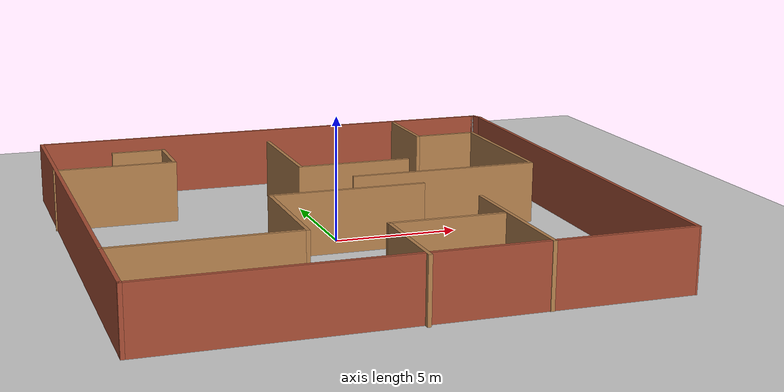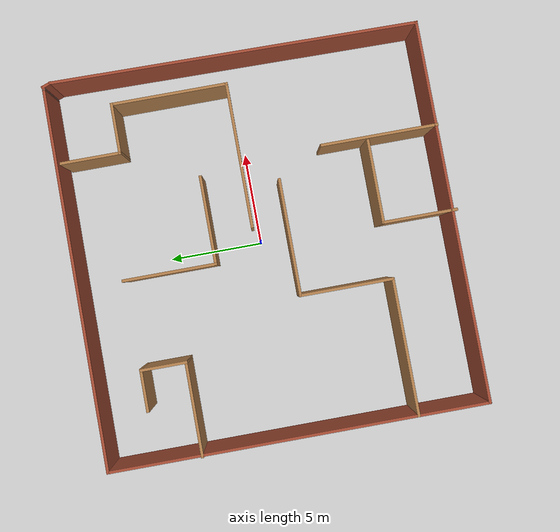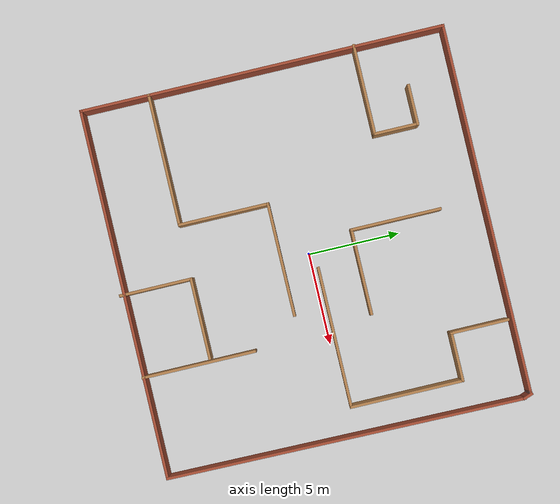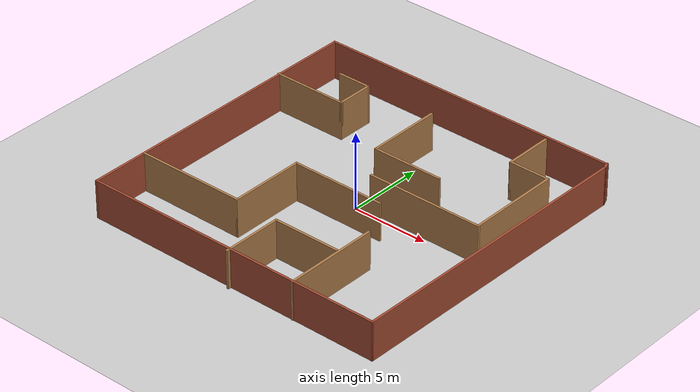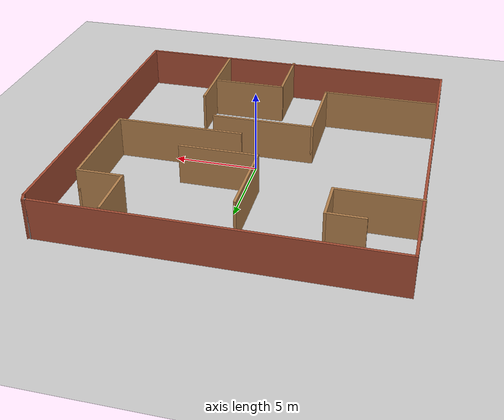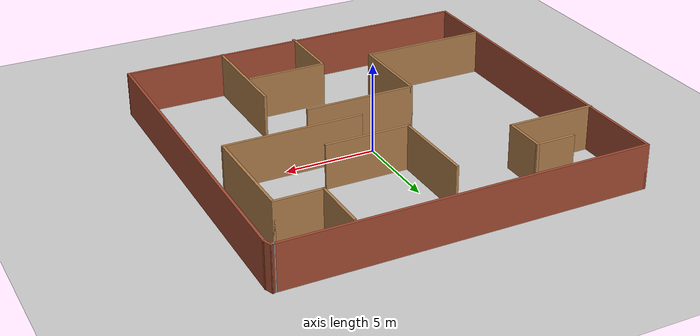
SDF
<sdf version="1.7">
 <world name="default">
  <light name="sun" type="directional">
   <pose>0 0 10 0 -0 0</pose>
   <diffuse>0.8 0.8 0.8 1</diffuse>
   <specular>0.2 0.2 0.2 1</specular>
   <attenuation>
    <range>1000</range>
    <constant>0.9</constant>
    <linear>0.01</linear>
    <quadratic>0.001</quadratic>
   </attenuation>
   <direction>-0.5 0.1 -0.9</direction>
   <spot><inner_angle>0</inner_angle><outer_angle>0</outer_angle><falloff>0</falloff></spot>
  </light>
  <model name="ground_plane">
   <static>1</static>
   <link name="link">
    <collision name="collision">
     <geometry><plane><normal>0 0 1</normal><size>100 100</size></plane></geometry>
     <surface>
      <contact><collide_bitmask>65535</collide_bitmask></contact>
      <friction><ode><mu>100</mu><mu2>50</mu2></ode></friction>
     </surface>
    </collision>
    <visual name="visual">
     <cast_shadows>0</cast_shadows>
     <geometry><plane><normal>0 0 1</normal><size>100 100</size></plane></geometry>
     <material>
      <script><uri>file://media/materials/scripts/gazebo.material</uri><name>Gazebo/Grey</name></script>
     </material>
    </visual>
   </link>
  </model>
  <gravity>0 0 -9.8</gravity>
  <magnetic_field>6e-06 2.3e-05 -4.2e-05</magnetic_field>
  <atmosphere type="adiabatic"/>
  <physics type="ode">
   <max_step_size>0.001</max_step_size>
   <real_time_factor>1</real_time_factor>
   <real_time_update_rate>1000</real_time_update_rate>
  </physics>
  <scene><ambient>0.4 0.4 0.4 1</ambient><background>0.7 0.7 0.7 1</background><shadows>1</shadows></scene>
  <spherical_coordinates>
   <surface_model>EARTH_WGS84</surface_model>
   <latitude_deg>0</latitude_deg>
   <longitude_deg>0</longitude_deg>
   <elevation>0</elevation>
   <heading_deg>0</heading_deg>
  </spherical_coordinates>
  <model name="maze">
   <pose>-0.042155 -0.227257 0 0 -0 0</pose>
   <link name="Wall_13">
    <collision name="Wall_13_Collision">
     <geometry><box><size>20.25 0.15 2.5</size></box></geometry>
     <pose>0 0 1.25 0 -0 0</pose>
    </collision>
    <visual name="Wall_13_Visual">
     <pose>0 0 1.25 0 -0 0</pose>
     <geometry><box><size>20.25 0.15 2.5</size></box></geometry>
     <material>
      <script><uri>file://media/materials/scripts/gazebo.material</uri><name>Gazebo/Bricks</name></script>
      <ambient>1 1 1 1</ambient>
     </material>
     <meta><layer>0</layer></meta>
    </visual>
    <pose>-0.105384 -9.85017 0 0 -0 3.14159</pose>
   </link>
   <link name="Wall_14">
    <collision name="Wall_14_Collision">
     <geometry><box><size>20 0.15 2.5</size></box></geometry>
     <pose>0 0 1.25 0 -0 0</pose>
    </collision>
    <visual name="Wall_14_Visual">
     <pose>0 0 1.25 0 -0 0</pose>
     <geometry><box><size>20 0.15 2.5</size></box></geometry>
     <material>
      <script><uri>file://media/materials/scripts/gazebo.material</uri><name>Gazebo/Bricks</name></script>
      <ambient>1 1 1 1</ambient>
     </material>
     <meta><layer>0</layer></meta>
    </visual>
    <pose>-10.1554 0.074828 0 0 -0 1.5708</pose>
   </link>
   <link name="Wall_15">
    <collision name="Wall_15_Collision">
     <geometry><box><size>20.25 0.15 2.5</size></box></geometry>
     <pose>0 0 1.25 0 -0 0</pose>
    </collision>
    <visual name="Wall_15_Visual">
     <pose>0 0 1.25 0 -0 0</pose>
     <geometry><box><size>20.25 0.15 2.5</size></box></geometry>
     <material>
      <script><uri>file://media/materials/scripts/gazebo.material</uri><name>Gazebo/Bricks</name></script>
      <ambient>1 1 1 1</ambient>
     </material>
     <meta><layer>0</layer></meta>
    </visual>
    <pose>-0.105384 9.99983 0 0 -0 0</pose>
   </link>
   <link name="Wall_16">
    <collision name="Wall_16_Collision">
     <geometry><box><size>0.15 0.15 2.5</size></box></geometry>
     <pose>0 0 1.25 0 -0 0</pose>
    </collision>
    <visual name="Wall_16_Visual">
     <pose>0 0 1.25 0 -0 0</pose>
     <geometry><box><size>0.15 0.15 2.5</size></box></geometry>
     <material>
      <script><uri>file://media/materials/scripts/gazebo.material</uri><name>Gazebo/Grey</name></script>
      <ambient>1 1 1 1</ambient>
     </material>
     <meta><layer>0</layer></meta>
    </visual>
    <pose>9.94462 9.99983 0 0 -0 0</pose>
   </link>
   <link name="Wall_17">
    <collision name="Wall_17_Collision">
     <geometry><box><size>0.25 0.15 2.5</size></box></geometry>
     <pose>0 0 1.25 0 -0 0</pose>
    </collision>
    <visual name="Wall_17_Visual">
     <pose>0 0 1.25 0 -0 0</pose>
     <geometry><box><size>0.25 0.15 2.5</size></box></geometry>
     <material>
      <script><uri>file://media/materials/scripts/gazebo.material</uri><name>Gazebo/Bricks</name></script>
      <ambient>1 1 1 1</ambient>
     </material>
     <meta><layer>0</layer></meta>
    </visual>
    <pose>9.99291 10.0128 0 0 -0 0.261799</pose>
   </link>
   <link name="Wall_18">
    <collision name="Wall_18_Collision">
     <geometry><box><size>0.586333 0.15 2.5</size></box></geometry>
     <pose>0 0 1.25 0 -0 0</pose>
    </collision>
    <visual name="Wall_18_Visual">
     <pose>0 0 1.25 0 -0 0</pose>
     <geometry><box><size>0.586333 0.15 2.5</size></box></geometry>
     <material>
      <script><uri>file://media/materials/scripts/gazebo.material</uri><name>Gazebo/Bricks</name></script>
      <ambient>1 1 1 1</ambient>
     </material>
     <meta><layer>0</layer></meta>
    </visual>
    <pose>10.116 9.82075 0 0 -0 -1.22104</pose>
   </link>
   <link name="Wall_20">
    <collision name="Wall_20_Collision">
     <geometry><box><size>5 0.15 2.5</size></box></geometry>
     <pose>0 0 1.25 0 -0 0</pose>
    </collision>
    <visual name="Wall_20_Visual">
     <pose>0 0 1.25 0 -0 0</pose>
     <geometry><box><size>5 0.15 2.5</size></box></geometry>
     <material>
      <script><uri>file://media/materials/scripts/gazebo.material</uri><name>Gazebo/Wood</name></script>
      <ambient>1 1 1 1</ambient>
     </material>
     <meta><layer>0</layer></meta>
    </visual>
    <pose>-7.78689 5.12426 0 0 -0 0</pose>
   </link>
   <link name="Wall_21">
    <collision name="Wall_21_Collision">
     <geometry><box><size>2.5 0.15 2.5</size></box></geometry>
     <pose>0 0 1.25 0 -0 0</pose>
    </collision>
    <visual name="Wall_21_Visual">
     <pose>0 0 1.25 0 -0 0</pose>
     <geometry><box><size>2.5 0.15 2.5</size></box></geometry>
     <material>
      <script><uri>file://media/materials/scripts/gazebo.material</uri><name>Gazebo/Wood</name></script>
      <ambient>1 1 1 1</ambient>
     </material>
     <meta><layer>0</layer></meta>
    </visual>
    <pose>-5.36189 6.29926 0 0 -0 1.5708</pose>
   </link>
   <link name="Wall_22">
    <collision name="Wall_22_Collision">
     <geometry><box><size>2.25 0.15 2.5</size></box></geometry>
     <pose>0 0 1.25 0 -0 0</pose>
    </collision>
    <visual name="Wall_22_Visual">
     <pose>0 0 1.25 0 -0 0</pose>
     <geometry><box><size>2.25 0.15 2.5</size></box></geometry>
     <material>
      <script><uri>file://media/materials/scripts/gazebo.material</uri><name>Gazebo/Wood</name></script>
      <ambient>1 1 1 1</ambient>
     </material>
     <meta><layer>0</layer></meta>
    </visual>
    <pose>-6.41189 7.47426 0 0 -0 3.14159</pose>
   </link>
   <link name="Wall_24">
    <collision name="Wall_24_Collision">
     <geometry><box><size>7.25 0.15 2.5</size></box></geometry>
     <pose>0 0 1.25 0 -0 0</pose>
    </collision>
    <visual name="Wall_24_Visual">
     <pose>0 0 1.25 0 -0 0</pose>
     <geometry><box><size>7.25 0.15 2.5</size></box></geometry>
     <material>
      <script><uri>file://media/materials/scripts/gazebo.material</uri><name>Gazebo/Wood</name></script>
      <ambient>1 1 1 1</ambient>
     </material>
     <meta><layer>0</layer></meta>
    </visual>
    <pose>-6.60036 -6.13534 0 0 -0 0</pose>
   </link>
   <link name="Wall_25">
    <collision name="Wall_25_Collision">
     <geometry><box><size>5 0.15 2.5</size></box></geometry>
     <pose>0 0 1.25 0 -0 0</pose>
    </collision>
    <visual name="Wall_25_Visual">
     <pose>0 0 1.25 0 -0 0</pose>
     <geometry><box><size>5 0.15 2.5</size></box></geometry>
     <material>
      <script><uri>file://media/materials/scripts/gazebo.material</uri><name>Gazebo/Wood</name></script>
      <ambient>1 1 1 1</ambient>
     </material>
     <meta><layer>0</layer></meta>
    </visual>
    <pose>-3.05036 -3.71034 0 0 -0 1.5708</pose>
   </link>
   <link name="Wall_26">
    <collision name="Wall_26_Collision">
     <geometry><box><size>6.25 0.15 2.5</size></box></geometry>
     <pose>0 0 1.25 0 -0 0</pose>
    </collision>
    <visual name="Wall_26_Visual">
     <pose>0 0 1.25 0 -0 0</pose>
     <geometry><box><size>6.25 0.15 2.5</size></box></geometry>
     <material>
      <script><uri>file://media/materials/scripts/gazebo.material</uri><name>Gazebo/Wood</name></script>
      <ambient>1 1 1 1</ambient>
     </material>
     <meta><layer>0</layer></meta>
    </visual>
    <pose>-0.000359 -1.28534 0 0 -0 0</pose>
   </link>
   <link name="Wall_32">
    <collision name="Wall_32_Collision">
     <geometry><box><size>5 0.15 2.5</size></box></geometry>
     <pose>0 0 1.25 0 -0 0</pose>
    </collision>
    <visual name="Wall_32_Visual">
     <pose>0 0 1.25 0 -0 0</pose>
     <geometry><box><size>5 0.15 2.5</size></box></geometry>
     <material>
      <script><uri>file://media/materials/scripts/gazebo.material</uri><name>Gazebo/Wood</name></script>
      <ambient>1 1 1 1</ambient>
     </material>
     <meta><layer>0</layer></meta>
    </visual>
    <pose>-0.675066 5.16038 0 0 -0 -1.5708</pose>
   </link>
   <link name="Wall_33">
    <collision name="Wall_33_Collision">
     <geometry><box><size>4.75 0.15 2.5</size></box></geometry>
     <pose>0 0 1.25 0 -0 0</pose>
    </collision>
    <visual name="Wall_33_Visual">
     <pose>0 0 1.25 0 -0 0</pose>
     <geometry><box><size>4.75 0.15 2.5</size></box></geometry>
     <material>
      <script><uri>file://media/materials/scripts/gazebo.material</uri><name>Gazebo/Wood</name></script>
      <ambient>1 1 1 1</ambient>
     </material>
     <meta><layer>0</layer></meta>
    </visual>
    <pose>1.62493 2.73537 0 0 -0 0</pose>
   </link>
   <link name="Wall_39">
    <collision name="Wall_39_Collision">
     <geometry><box><size>3.25 0.15 2.5</size></box></geometry>
     <pose>0 0 1.25 0 -0 0</pose>
    </collision>
    <visual name="Wall_39_Visual">
     <pose>0 0 1.25 0 -0 0</pose>
     <geometry><box><size>3.25 0.15 2.5</size></box></geometry>
     <material>
      <script><uri>file://media/materials/scripts/gazebo.material</uri><name>Gazebo/Wood</name></script>
      <ambient>1 1 1 1</ambient>
     </material>
     <meta><layer>0</layer></meta>
    </visual>
    <pose>5.90842 8.18885 0 0 -0 -1.5708</pose>
   </link>
   <link name="Wall_40">
    <collision name="Wall_40_Collision">
     <geometry><box><size>2.75 0.15 2.5</size></box></geometry>
     <pose>0 0 1.25 0 -0 0</pose>
    </collision>
    <visual name="Wall_40_Visual">
     <pose>0 0 1.25 0 -0 0</pose>
     <geometry><box><size>2.75 0.15 2.5</size></box></geometry>
     <material>
      <script><uri>file://media/materials/scripts/gazebo.material</uri><name>Gazebo/Wood</name></script>
      <ambient>1 1 1 1</ambient>
     </material>
     <meta><layer>0</layer></meta>
    </visual>
    <pose>7.20842 6.63885 0 0 -0 0</pose>
   </link>
   <link name="Wall_42">
    <collision name="Wall_42_Collision">
     <geometry><box><size>6.25 0.15 2.5</size></box></geometry>
     <pose>0 0 1.25 0 -0 0</pose>
    </collision>
    <visual name="Wall_42_Visual">
     <pose>0 0 1.25 0 -0 0</pose>
     <geometry><box><size>6.25 0.15 2.5</size></box></geometry>
     <material>
      <script><uri>file://media/materials/scripts/gazebo.material</uri><name>Gazebo/Wood</name></script>
      <ambient>1 1 1 1</ambient>
     </material>
     <meta><layer>0</layer></meta>
    </visual>
    <pose>4.43175 -6.83854 0 0 -0 1.5708</pose>
   </link>
   <link name="Wall_45">
    <collision name="Wall_45_Collision">
     <geometry><box><size>4.5 0.15 2.5</size></box></geometry>
     <pose>0 0 1.25 0 -0 0</pose>
    </collision>
    <visual name="Wall_45_Visual">
     <pose>0 0 1.25 0 -0 0</pose>
     <geometry><box><size>4.5 0.15 2.5</size></box></geometry>
     <material>
      <script><uri>file://media/materials/scripts/gazebo.material</uri><name>Gazebo/Wood</name></script>
      <ambient>1 1 1 1</ambient>
     </material>
     <meta><layer>0</layer></meta>
    </visual>
    <pose>2.07216 -6.19687 0 0 -0 3.14159</pose>
   </link>
   <link name="Wall_46">
    <collision name="Wall_46_Collision">
     <geometry><box><size>4 0.15 2.5</size></box></geometry>
     <pose>0 0 1.25 0 -0 0</pose>
    </collision>
    <visual name="Wall_46_Visual">
     <pose>0 0 1.25 0 -0 0</pose>
     <geometry><box><size>4 0.15 2.5</size></box></geometry>
     <material>
      <script><uri>file://media/materials/scripts/gazebo.material</uri><name>Gazebo/Wood</name></script>
      <ambient>1 1 1 1</ambient>
     </material>
     <meta><layer>0</layer></meta>
    </visual>
    <pose>-0.102836 -8.12187 0 0 -0 -1.5708</pose>
   </link>
   <link name="Wall_48">
    <collision name="Wall_48_Collision">
     <geometry><box><size>6.25 0.15 2.5</size></box></geometry>
     <pose>0 0 1.25 0 -0 0</pose>
    </collision>
    <visual name="Wall_48_Visual">
     <pose>0 0 1.25 0 -0 0</pose>
     <geometry><box><size>6.25 0.15 2.5</size></box></geometry>
     <material>
      <script><uri>file://media/materials/scripts/gazebo.material</uri><name>Gazebo/Wood</name></script>
      <ambient>1 1 1 1</ambient>
     </material>
     <meta><layer>0</layer></meta>
    </visual>
    <pose>8.50842 3.58885 0 0 -0 -1.5708</pose>
   </link>
   <link name="Wall_49">
    <collision name="Wall_49_Collision">
     <geometry><box><size>7.75 0.15 2.5</size></box></geometry>
     <pose>0 0 1.25 0 -0 0</pose>
    </collision>
    <visual name="Wall_49_Visual">
     <pose>0 0 1.25 0 -0 0</pose>
     <geometry><box><size>7.75 0.15 2.5</size></box></geometry>
     <material>
      <script><uri>file://media/materials/scripts/gazebo.material</uri><name>Gazebo/Wood</name></script>
      <ambient>1 1 1 1</ambient>
     </material>
     <meta><layer>0</layer></meta>
    </visual>
    <pose>4.70842 0.538851 0 0 -0 3.14159</pose>
   </link>
   <link name="Wall_8">
    <collision name="Wall_8_Collision">
     <geometry><box><size>19.6175 0.15 2.5</size></box></geometry>
     <pose>0 0 1.25 0 -0 0</pose>
    </collision>
    <visual name="Wall_8_Visual">
     <pose>0 0 1.25 0 -0 0</pose>
     <geometry><box><size>19.6175 0.15 2.5</size></box></geometry>
     <material>
      <script><uri>file://media/materials/scripts/gazebo.material</uri><name>Gazebo/Bricks</name></script>
      <ambient>1 1 1 1</ambient>
     </material>
     <meta><layer>0</layer></meta>
    </visual>
    <pose>10.0677 -0.117188 0 0 -0 -1.58344</pose>
   </link>
   <static>1</static>
  </model>
 </world>
</sdf>
